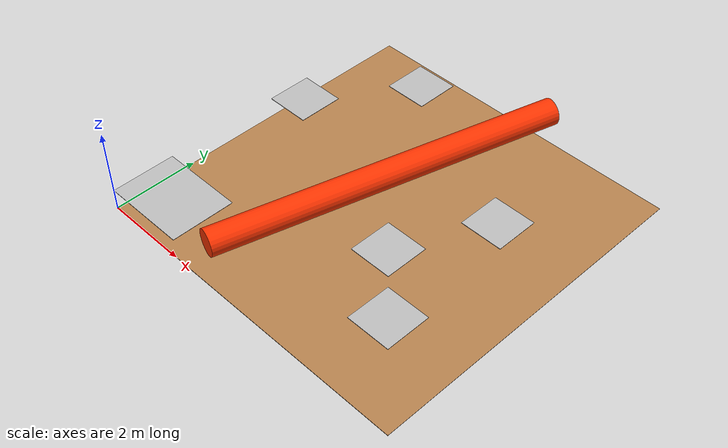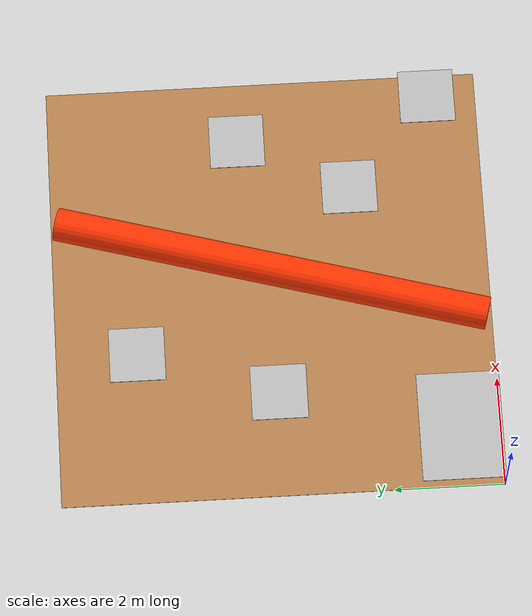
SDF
<?xml version="1.0" encoding="UTF-8" ?>
<sdf version="1.4">
  <world name="default">
    <physics type="ode">
      <gravity>0 0 -9.81</gravity>
      <ode>
        <solver>
          <type>quick</type>
          <iters>10</iters>
          <sor>1.3</sor>
        </solver>
        <constraints>
          <cfm>0.0</cfm>
          <erp>0.2</erp>
          <contact_max_correcting_vel>10</contact_max_correcting_vel>
          <contact_surface_layer>0.001</contact_surface_layer>
        </constraints>
      </ode>
      <max_step_size>0.001</max_step_size>
    </physics>

    <include>
      <uri>model://sun</uri>
    </include>

    <model name ='marcador1'>
    <pose>5.5 2.5 1 0 0 0</pose>
    <link name ='link'>
      <pose>0 0 0 0 0 0</pose>
      <collision name ='collision'>
        <geometry>
          <box><size>1 1 0.01</size></box>
        </geometry>
      </collision>
      <visual name ='visual'>
        <geometry>
          <box><size>1 1 0.01</size></box>
        </geometry>
        <material>
          <script>
            <uri>model://box/materials/scripts</uri>
            <uri>model://box/materials/textures</uri>
            <name>petrobras/Squares</name>
          </script>
        </material>
      </visual>
    </link>
  </model>

    <model name ='marcador2'>
    <pose>6.5 4.5 1 0 0 0</pose>
    <link name ='link'>
      <pose>0 0 0 0 0 0</pose>
      <collision name ='collision'>
        <geometry>
          <box><size>1 1 0.01</size></box>
        </geometry>
      </collision>
      <visual name ='visual'>
        <geometry>
          <box><size>1 1 0.01</size></box>
        </geometry>
        <material>
          <script>
            <uri>model://box/materials/scripts</uri>
            <uri>model://box/materials/textures</uri>
            <name>petrobras/Squares</name>
          </script>
        </material>
      </visual>
    </link>
  </model>

    <model name ='marcador3'>
    <pose>2.5 6.5 1 0 0 0</pose>
    <link name ='link'>
      <pose>0 0 0 0 0 0</pose>
      <collision name ='collision'>
        <geometry>
          <box><size>1 1 0.01</size></box>
        </geometry>
      </collision>
      <visual name ='visual'>
        <geometry>
          <box><size>1 1 0.01</size></box>
        </geometry>
        <material>
          <script>
            <uri>model://box/materials/scripts</uri>
            <uri>model://box/materials/textures</uri>
            <name>petrobras/Squares</name>
          </script>
        </material>
      </visual>
    </link>
  </model>

  <model name ='cilindro'>
    <pose>4 4 1 0 1.57 1.3</pose>
    <link name ='link'>
      <pose>0 0 0 0 0 0</pose>
      <collision name ='collision'>
        <geometry>
          <cylinder>
            <radius>0.3</radius>
            <length>8</length>
          </cylinder>
        </geometry>
      </collision>
      <visual name ='visual'>
        <geometry>
          <cylinder>
            <radius>0.3</radius>
            <length>8</length>
          </cylinder>
        </geometry>
        <material>
          <ambient>1 0.2 0 1</ambient>
          <diffuse>1 0.2 0 1</diffuse>
          <specular>0.1 0.1 0.1 1</specular>
          <emissive>0 0 0 0</emissive>
        </material>
      </visual>
    </link>
  </model>

  <model name ='ground'>
    <pose>4 4 0 0 0 0</pose>
    <link name ='link'>
      <pose>0 0 0 0 0 0</pose>
      <collision name ='collision'>
        <geometry>
          <box><size>8 8 0.01</size></box>
        </geometry>
      </collision>
      <visual name ='visual'>
        <geometry>
          <box><size>8 8 0.01</size></box>
        </geometry>
      <material>
      <script>
          <uri>file://media/materials/scripts/gazebo.material</uri>
          <name>Gazebo/Wood</name>
      </script>
      </material>
      </visual>
    </link>

    <link name ='base_costeira'>
      <pose>-3 -3.25 0.5 0 0 1.57</pose>
      <collision name ='collision'>
        <geometry>
          <box><size>1.5 2 0.01</size></box>
        </geometry>
      </collision>
      <visual name ='visual'>
        <geometry>
          <box><size>1.5 2 0.01</size></box>
        </geometry>
        <material>
          <script>
            <uri>model://box/materials/scripts</uri>
            <uri>model://box/materials/textures</uri>
            <name>base/Squares</name>
          </script>
        </material>
      </visual>
    </link>

    <link name ='marcador1'>
      <pose>-2.5 0 1.5 0 0 0</pose>
      <inertial>
        <pose>0 0 0 0 0 0</pose>
        <mass>0.56</mass>
      </inertial>
      <collision name ='collision'>
        <geometry>
          <box><size>1 1 0.01</size></box>
        </geometry>
      </collision>
      <visual name ='visual'>
        <geometry>
          <box><size>1 1 0.01</size></box>
        </geometry>
        <material>
          <script>
            <uri>model://box/materials/scripts</uri>
            <uri>model://box/materials/textures</uri>
            <name>petrobras/Squares</name>
          </script>
        </material>
      </visual>
    </link>

    <link name ='marcador2'>
      <pose>3 -3 1.5 0 0 0</pose>
      <inertial>
        <pose>0 0 0 0 0 0</pose>
        <mass>0.56</mass>
      </inertial>
      <collision name ='collision'>
        <geometry>
          <box><size>1 1 0.01</size></box>
        </geometry>
      </collision>
      <visual name ='visual'>
        <geometry>
          <box><size>1 1 0.01</size></box>
        </geometry>
        <material>
          <script>
            <uri>model://box/materials/scripts</uri>
            <uri>model://box/materials/textures</uri>
            <name>petrobras/Squares</name>
          </script>
        </material>
      </visual>
    </link>

    <joint name="marcador_plataforma1" type="fixed">
      <pose>0 0 0 0 0 0</pose>
      <child>marcador1</child>
      <parent>link</parent>
    </joint>

    <joint name="marcador_plataforma2" type="fixed">
      <pose>0 0 0 0 0 0</pose>
      <child>marcador2</child>
      <parent>link</parent>
    </joint>

    <joint name="marcador_base_costeira" type="fixed">
      <pose>0 0 0 0 0 0</pose>
      <child>base_costeira</child>
      <parent>link</parent>
    </joint>

    <joint name="arena" type="fixed">
      <pose>0 0 0 0 0 0</pose>
      <child>link</child>
      <parent>world</parent>
    </joint>
  </model>

  </world>
</sdf>
